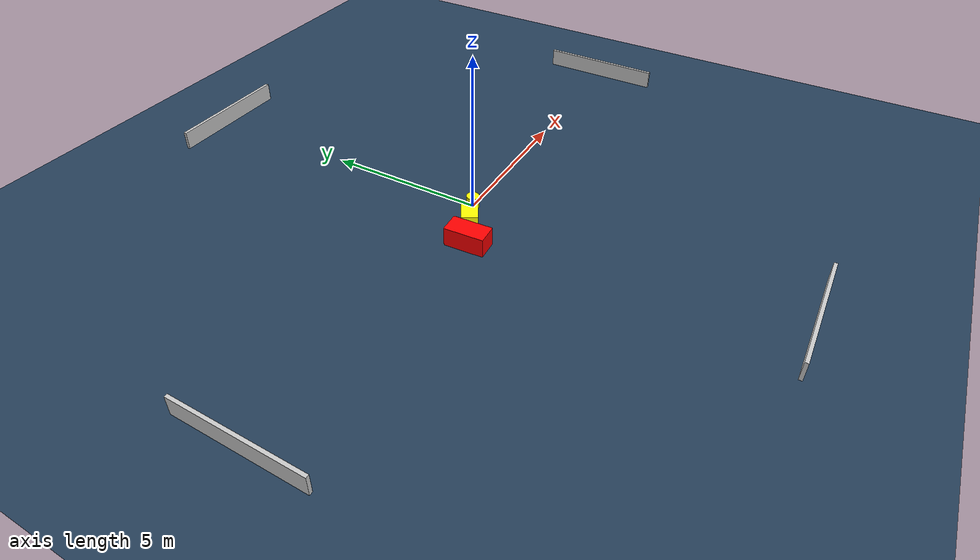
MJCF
<?xml version="1.0" ?>
<mujoco model="generated_environment">
  <option timestep="0.01" integrator="RK4" cone="elliptic"/>
  <default>
    <geom density="1"/>
  </default>
  <asset>
    <texture builtin="gradient" height="3072" name="skybox" rgb1="0.3 0.5 0.7" rgb2="0 0 0" type="skybox" width="512"/>
    <texture builtin="checker" height="300" name="groundplane" rgb1="0.2 0.3 0.4" rgb2="0.1 0.2 0.3" type="2d" width="300"/>
    <material name="groundplane" reflectance="0.2" texrepeat="5 5" texture="groundplane"/>
  </asset>
  <worldbody>
    <light dir="0 0 -1" directional="true" pos="0 0 1.5"/>
    <geom condim="3" friction="0.5 0.005 0.001" material="groundplane" name="floor" pos="0 0 0" size="0 0 0.05" type="plane"/>
    <body name="walls">
      <geom name="wall_1" condim="4" pos="-10.0 0.0 0.3" rgba="0.800000011920929 0.800000011920929 0.800000011920929 1.0" size="0.05 2.0 0.3" type="box"/>
      <geom name="wall_2" condim="4" pos="10.0 0.0 0.3" rgba="0.800000011920929 0.800000011920929 0.800000011920929 1.0" size="0.05 2.0 0.3" type="box"/>
      <geom name="wall_3" condim="4" pos="0.0 -10.0 0.3" rgba="0.800000011920929 0.800000011920929 0.800000011920929 1.0" size="2.0 0.05 0.3" type="box"/>
      <geom name="wall_4" condim="4" pos="0.0 10.0 0.3" rgba="0.800000011920929 0.800000011920929 0.800000011920929 1.0" size="2.0 0.05 0.3" type="box"/>
    </body>
    <body name="robot">
      <joint name="joint_x" type="slide" pos="0 0 0" axis="1 0 0"/>
      <joint name="joint_y" type="slide" pos="0 0 0" axis="0 1 0"/>
      <geom name="robot" type="cylinder" pos="0.0 0.0 0.2" size="0.2 0.2 0.0" mass="5.0" friction="1.0 0.005 0.0001" condim="4" rgba="1.0 1.0 0.0 1.0"/>
    </body>
    <body name="obstacle_1_movable">
      <geom name="obstacle_1_movable" condim="4" pos="-0.870709457476385 -0.38443233438135777 0.3" euler="0 0 210.61996893347853" friction="0.0 0.005 0.001" rgba="1.0 1.0 0.0 1.0" size="0.38106327652217176 0.25305055219077077 0.3" type="box" mass="0.1"/>
      <joint type="free"/>
    </body>
    <body name="obstacle_2_static">
      <geom name="obstacle_2_static" condim="4" pos="-1.633171644563913 -0.788057916477351 0.3" euler="0 0 273.2408757953684" friction="0.0 0.005 0.001" rgba="1.0 0.0 0.0 1.0" size="0.6145940389645856 0.31858738004386983 0.3" type="box"/>
    </body>
  </worldbody>
  <actuator>
    <motor name="actuator_x" joint="joint_x" gear="1" ctrlrange="-1 1"/>
    <motor name="actuator_y" joint="joint_y" gear="1" ctrlrange="-1 1"/>
  </actuator>
</mujoco>
